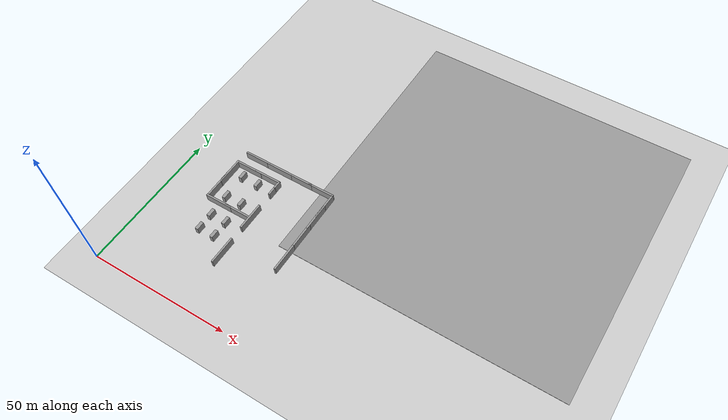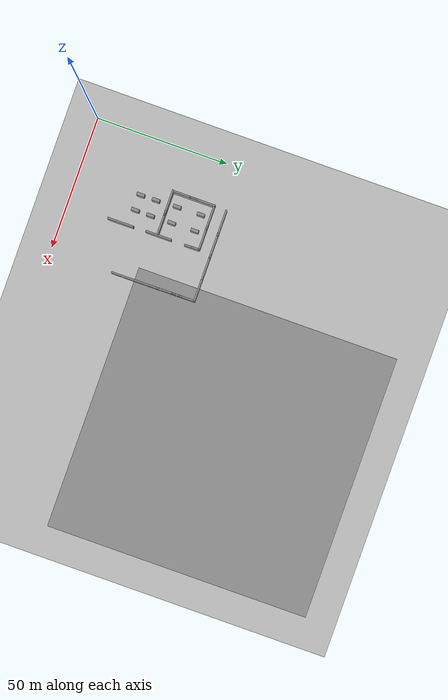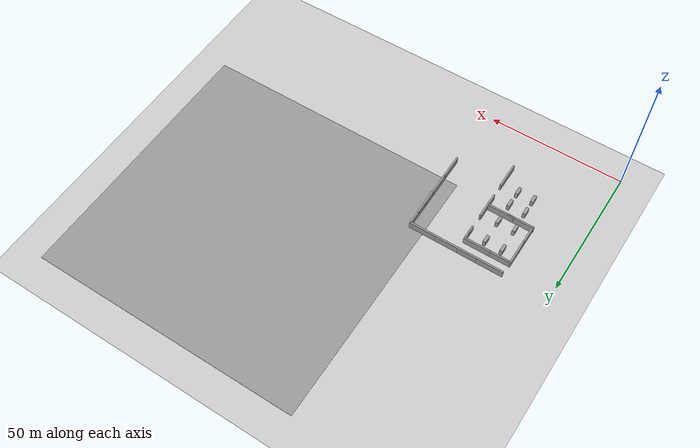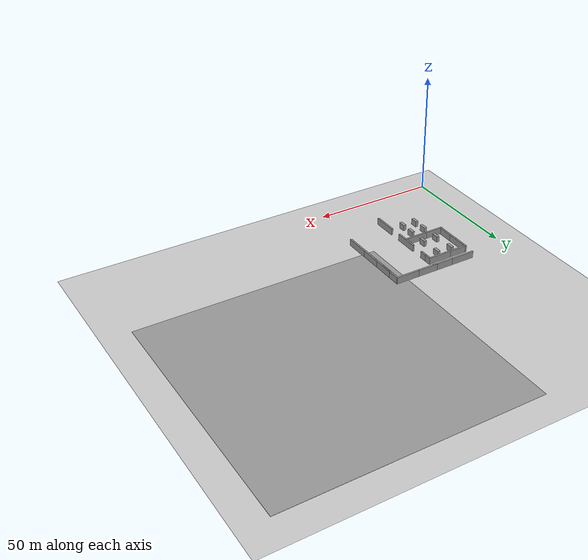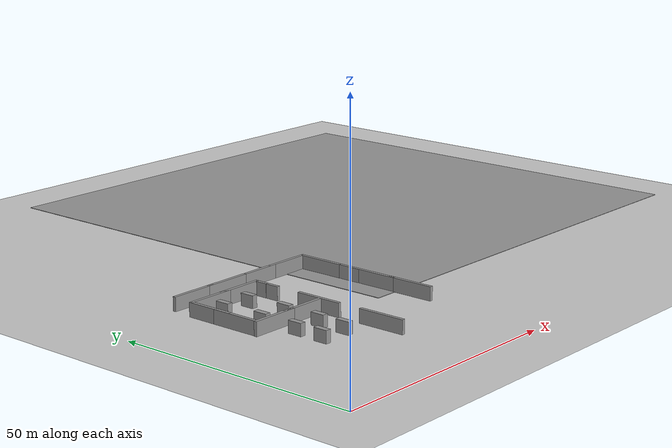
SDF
<sdf version="1.7">
 <world name="default">
  <model name="ground_plane">
   <static>1</static>
   <link name="link">
    <collision name="collision">
     <geometry><plane><normal>0 0 1</normal><size>100 100</size></plane></geometry>
     <surface><friction><ode><mu>100</mu><mu2>50</mu2></ode></friction></surface>
    </collision>
    <visual name="visual">
     <cast_shadows>0</cast_shadows>
     <geometry><plane><normal>0 0 1</normal><size>100 100</size></plane></geometry>
     <material>
      <script><uri>file://media/materials/scripts/gazebo.material</uri><name>Gazebo/Grey</name></script>
     </material>
    </visual>
   </link>
  </model>
  <model name="ground_plane_2">
   <static>1</static>
   <link name="link">
    <collision name="collision">
     <geometry><plane><normal>0 0 1</normal><size>100 100</size></plane></geometry>
     <surface>
      <contact><collide_bitmask>65535</collide_bitmask></contact>
      <friction><ode><mu>100</mu><mu2>50</mu2></ode></friction>
     </surface>
    </collision>
    <visual name="visual">
     <cast_shadows>0</cast_shadows>
     <geometry><plane><normal>0 0 1</normal><size>100 100</size></plane></geometry>
     <material>
      <script><uri>file://media/materials/scripts/gazebo.material</uri><name>Gazebo/Grey</name></script>
     </material>
    </visual>
   </link>
   <pose>96.4085 82.3703 0 0 -0 0</pose>
  </model>
  <model name="grey_wall_hou_clone_clone_3_clone_0_clone_1">
   <link name="link">
    <pose>0 0 1.37589 0 -0 0</pose>
    <inertial>
     <inertia><ixx>0</ixx><ixy>0</ixy><ixz>0</ixz><iyy>0</iyy><iyz>0</iyz><izz>0</izz></inertia>
     <mass>0</mass>
    </inertial>
    <visual name="visual">
     <cast_shadows>0</cast_shadows>
     <geometry><box><size>9.82221 0.642976 2.8</size></box></geometry>
     <material>
      <script>
       <uri>model://grey_wall/materials/scripts</uri>
       <uri>model://grey_wall/materials/textures</uri>
       <name>vrc/grey_wall</name>
      </script>
      <shader type="pixel"><normal_map>__default__</normal_map></shader>
      <ambient>1 1 1 1</ambient>
      <diffuse>1 1 1 1</diffuse>
      <specular>0 0 0 1</specular>
      <emissive>0 0 0 1</emissive>
     </material>
    </visual>
    <collision name="collision">
     <geometry><box><size>9.82221 0.642976 2.8</size></box></geometry>
     <surface>
      <friction>
       <ode><mu>1</mu><mu2>1</mu2><fdir1>0 0 0</fdir1><slip1>0</slip1><slip2>0</slip2></ode>
       <torsional>
        <coefficient>1</coefficient>
        <patch_radius>0</patch_radius>
        <surface_radius>0</surface_radius>
        <use_patch_radius>1</use_patch_radius>
        <ode><slip>0</slip></ode>
       </torsional>
      </friction>
      <bounce><restitution_coefficient>0</restitution_coefficient><threshold>1e+06</threshold></bounce>
      <contact>
       <collide_without_contact>0</collide_without_contact>
       <collide_without_contact_bitmask>1</collide_without_contact_bitmask>
       <collide_bitmask>1</collide_bitmask>
       <ode>
        <soft_cfm>0</soft_cfm>
        <soft_erp>0.2</soft_erp>
        <kp>1e+13</kp>
        <kd>1</kd>
        <max_vel>0.01</max_vel>
        <min_depth>0</min_depth>
       </ode>
       <bullet>
        <split_impulse>1</split_impulse>
        <split_impulse_penetration_threshold>-0.01</split_impulse_penetration_threshold>
        <soft_cfm>0</soft_cfm>
        <soft_erp>0.2</soft_erp>
        <kp>1e+13</kp>
        <kd>1</kd>
       </bullet>
      </contact>
     </surface>
    </collision>
   </link>
   <static>1</static>
   <pose>33.2826 35.5332 0 0 0 -1.56855</pose>
  </model>
  <model name="grey_wall_hou_clone_clone_clone_9">
   <link name="link">
    <pose>0 0 1.37589 0 -0 0</pose>
    <inertial>
     <inertia><ixx>0</ixx><ixy>0</ixy><ixz>0</ixz><iyy>0</iyy><iyz>0</iyz><izz>0</izz></inertia>
     <mass>0</mass>
    </inertial>
    <visual name="visual">
     <cast_shadows>0</cast_shadows>
     <geometry><box><size>9.82221 0.642976 2.8</size></box></geometry>
     <material>
      <script>
       <uri>model://grey_wall/materials/scripts</uri>
       <uri>model://grey_wall/materials/textures</uri>
       <name>vrc/grey_wall</name>
      </script>
      <shader type="pixel"><normal_map>__default__</normal_map></shader>
      <ambient>1 1 1 1</ambient>
      <diffuse>1 1 1 1</diffuse>
      <specular>0 0 0 1</specular>
      <emissive>0 0 0 1</emissive>
     </material>
    </visual>
    <collision name="collision">
     <geometry><box><size>9.82221 0.642976 2.8</size></box></geometry>
     <surface>
      <friction>
       <ode><mu>1</mu><mu2>1</mu2><fdir1>0 0 0</fdir1><slip1>0</slip1><slip2>0</slip2></ode>
       <torsional>
        <coefficient>1</coefficient>
        <patch_radius>0</patch_radius>
        <surface_radius>0</surface_radius>
        <use_patch_radius>1</use_patch_radius>
        <ode><slip>0</slip></ode>
       </torsional>
      </friction>
      <bounce><restitution_coefficient>0</restitution_coefficient><threshold>1e+06</threshold></bounce>
      <contact>
       <collide_without_contact>0</collide_without_contact>
       <collide_without_contact_bitmask>1</collide_without_contact_bitmask>
       <collide_bitmask>1</collide_bitmask>
       <ode>
        <soft_cfm>0</soft_cfm>
        <soft_erp>0.2</soft_erp>
        <kp>1e+13</kp>
        <kd>1</kd>
        <max_vel>0.01</max_vel>
        <min_depth>0</min_depth>
       </ode>
       <bullet>
        <split_impulse>1</split_impulse>
        <split_impulse_penetration_threshold>-0.01</split_impulse_penetration_threshold>
        <soft_cfm>0</soft_cfm>
        <soft_erp>0.2</soft_erp>
        <kp>1e+13</kp>
        <kd>1</kd>
       </bullet>
      </contact>
     </surface>
    </collision>
   </link>
   <static>1</static>
   <pose>20.8801 35.0651 0 0 -0 0</pose>
  </model>
  <model name="grey_wall_hou_clone_clone_clone_10">
   <link name="link">
    <pose>0 0 1.37589 0 -0 0</pose>
    <inertial>
     <inertia><ixx>0</ixx><ixy>0</ixy><ixz>0</ixz><iyy>0</iyy><iyz>0</iyz><izz>0</izz></inertia>
     <mass>0</mass>
    </inertial>
    <visual name="visual">
     <cast_shadows>0</cast_shadows>
     <geometry><box><size>9.82221 0.642976 2.8</size></box></geometry>
     <material>
      <script>
       <uri>model://grey_wall/materials/scripts</uri>
       <uri>model://grey_wall/materials/textures</uri>
       <name>vrc/grey_wall</name>
      </script>
      <shader type="pixel"><normal_map>__default__</normal_map></shader>
      <ambient>1 1 1 1</ambient>
      <diffuse>1 1 1 1</diffuse>
      <specular>0 0 0 1</specular>
      <emissive>0 0 0 1</emissive>
     </material>
    </visual>
    <collision name="collision">
     <geometry><box><size>9.82221 0.642976 2.8</size></box></geometry>
     <surface>
      <friction>
       <ode><mu>1</mu><mu2>1</mu2><fdir1>0 0 0</fdir1><slip1>0</slip1><slip2>0</slip2></ode>
       <torsional>
        <coefficient>1</coefficient>
        <patch_radius>0</patch_radius>
        <surface_radius>0</surface_radius>
        <use_patch_radius>1</use_patch_radius>
        <ode><slip>0</slip></ode>
       </torsional>
      </friction>
      <bounce><restitution_coefficient>0</restitution_coefficient><threshold>1e+06</threshold></bounce>
      <contact>
       <collide_without_contact>0</collide_without_contact>
       <collide_without_contact_bitmask>1</collide_without_contact_bitmask>
       <collide_bitmask>1</collide_bitmask>
       <ode>
        <soft_cfm>0</soft_cfm>
        <soft_erp>0.2</soft_erp>
        <kp>1e+13</kp>
        <kd>1</kd>
        <max_vel>0.01</max_vel>
        <min_depth>0</min_depth>
       </ode>
       <bullet>
        <split_impulse>1</split_impulse>
        <split_impulse_penetration_threshold>-0.01</split_impulse_penetration_threshold>
        <soft_cfm>0</soft_cfm>
        <soft_erp>0.2</soft_erp>
        <kp>1e+13</kp>
        <kd>1</kd>
       </bullet>
      </contact>
     </surface>
    </collision>
   </link>
   <static>1</static>
   <pose>28.4204 35.0767 0 0 -0 0</pose>
  </model>
  <model name="grey_wall_hou_clone_clone_3_clone_0_clone_1_clone_2">
   <link name="link">
    <pose>0 0 1.37589 0 -0 0</pose>
    <inertial>
     <inertia><ixx>0</ixx><ixy>0</ixy><ixz>0</ixz><iyy>0</iyy><iyz>0</iyz><izz>0</izz></inertia>
     <mass>0</mass>
    </inertial>
    <visual name="visual">
     <cast_shadows>0</cast_shadows>
     <geometry><box><size>9.82221 0.642976 2.8</size></box></geometry>
     <material>
      <script>
       <uri>model://grey_wall/materials/scripts</uri>
       <uri>model://grey_wall/materials/textures</uri>
       <name>vrc/grey_wall</name>
      </script>
      <shader type="pixel"><normal_map>__default__</normal_map></shader>
      <ambient>1 1 1 1</ambient>
      <diffuse>1 1 1 1</diffuse>
      <specular>0 0 0 1</specular>
      <emissive>0 0 0 1</emissive>
     </material>
    </visual>
    <collision name="collision">
     <geometry><box><size>9.82221 0.642976 2.8</size></box></geometry>
     <surface>
      <friction>
       <ode><mu>1</mu><mu2>1</mu2><fdir1>0 0 0</fdir1><slip1>0</slip1><slip2>0</slip2></ode>
       <torsional>
        <coefficient>1</coefficient>
        <patch_radius>0</patch_radius>
        <surface_radius>0</surface_radius>
        <use_patch_radius>1</use_patch_radius>
        <ode><slip>0</slip></ode>
       </torsional>
      </friction>
      <bounce><restitution_coefficient>0</restitution_coefficient><threshold>1e+06</threshold></bounce>
      <contact>
       <collide_without_contact>0</collide_without_contact>
       <collide_without_contact_bitmask>1</collide_without_contact_bitmask>
       <collide_bitmask>1</collide_bitmask>
       <ode>
        <soft_cfm>0</soft_cfm>
        <soft_erp>0.2</soft_erp>
        <kp>1e+13</kp>
        <kd>1</kd>
        <max_vel>0.01</max_vel>
        <min_depth>0</min_depth>
       </ode>
       <bullet>
        <split_impulse>1</split_impulse>
        <split_impulse_penetration_threshold>-0.01</split_impulse_penetration_threshold>
        <soft_cfm>0</soft_cfm>
        <soft_erp>0.2</soft_erp>
        <kp>1e+13</kp>
        <kd>1</kd>
       </bullet>
      </contact>
     </surface>
    </collision>
   </link>
   <static>1</static>
   <pose>16.3889 46.4515 0 0 0 -1.56855</pose>
  </model>
  <model name="grey_wall_hou_clone_clone_clone_4_clone_clone_0_clone">
   <link name="link">
    <pose>0 0 1.37589 0 -0 0</pose>
    <inertial>
     <inertia><ixx>0</ixx><ixy>0</ixy><ixz>0</ixz><iyy>0</iyy><iyz>0</iyz><izz>0</izz></inertia>
     <mass>0</mass>
    </inertial>
    <visual name="visual">
     <cast_shadows>0</cast_shadows>
     <geometry><box><size>9.82221 0.642976 2.8</size></box></geometry>
     <material>
      <script>
       <uri>model://grey_wall/materials/scripts</uri>
       <uri>model://grey_wall/materials/textures</uri>
       <name>vrc/grey_wall</name>
      </script>
      <shader type="pixel"><normal_map>__default__</normal_map></shader>
      <ambient>1 1 1 1</ambient>
      <diffuse>1 1 1 1</diffuse>
      <specular>0 0 0 1</specular>
      <emissive>0 0 0 1</emissive>
     </material>
    </visual>
    <collision name="collision">
     <geometry><box><size>9.82221 0.642976 2.8</size></box></geometry>
     <surface>
      <friction>
       <ode><mu>1</mu><mu2>1</mu2><fdir1>0 0 0</fdir1><slip1>0</slip1><slip2>0</slip2></ode>
       <torsional>
        <coefficient>1</coefficient>
        <patch_radius>0</patch_radius>
        <surface_radius>0</surface_radius>
        <use_patch_radius>1</use_patch_radius>
        <ode><slip>0</slip></ode>
       </torsional>
      </friction>
      <bounce><restitution_coefficient>0</restitution_coefficient><threshold>1e+06</threshold></bounce>
      <contact>
       <collide_without_contact>0</collide_without_contact>
       <collide_without_contact_bitmask>1</collide_without_contact_bitmask>
       <collide_bitmask>1</collide_bitmask>
       <ode>
        <soft_cfm>0</soft_cfm>
        <soft_erp>0.2</soft_erp>
        <kp>1e+13</kp>
        <kd>1</kd>
        <max_vel>0.01</max_vel>
        <min_depth>0</min_depth>
       </ode>
       <bullet>
        <split_impulse>1</split_impulse>
        <split_impulse_penetration_threshold>-0.01</split_impulse_penetration_threshold>
        <soft_cfm>0</soft_cfm>
        <soft_erp>0.2</soft_erp>
        <kp>1e+13</kp>
        <kd>1</kd>
       </bullet>
      </contact>
     </surface>
    </collision>
   </link>
   <static>1</static>
   <pose>21.103 51.0163 0 0 -0 0</pose>
  </model>
  <model name="grey_wall_hou_clone_clone_clone_4_clone_clone_0_clone_0">
   <link name="link">
    <pose>0 0 1.37589 0 -0 0</pose>
    <inertial>
     <inertia><ixx>0</ixx><ixy>0</ixy><ixz>0</ixz><iyy>0</iyy><iyz>0</iyz><izz>0</izz></inertia>
     <mass>0</mass>
    </inertial>
    <visual name="visual">
     <cast_shadows>0</cast_shadows>
     <geometry><box><size>9.82221 0.642976 2.8</size></box></geometry>
     <material>
      <script>
       <uri>model://grey_wall/materials/scripts</uri>
       <uri>model://grey_wall/materials/textures</uri>
       <name>vrc/grey_wall</name>
      </script>
      <shader type="pixel"><normal_map>__default__</normal_map></shader>
      <ambient>1 1 1 1</ambient>
      <diffuse>1 1 1 1</diffuse>
      <specular>0 0 0 1</specular>
      <emissive>0 0 0 1</emissive>
     </material>
    </visual>
    <collision name="collision">
     <geometry><box><size>9.82221 0.642976 2.8</size></box></geometry>
     <surface>
      <friction>
       <ode><mu>1</mu><mu2>1</mu2><fdir1>0 0 0</fdir1><slip1>0</slip1><slip2>0</slip2></ode>
       <torsional>
        <coefficient>1</coefficient>
        <patch_radius>0</patch_radius>
        <surface_radius>0</surface_radius>
        <use_patch_radius>1</use_patch_radius>
        <ode><slip>0</slip></ode>
       </torsional>
      </friction>
      <bounce><restitution_coefficient>0</restitution_coefficient><threshold>1e+06</threshold></bounce>
      <contact>
       <collide_without_contact>0</collide_without_contact>
       <collide_without_contact_bitmask>1</collide_without_contact_bitmask>
       <collide_bitmask>1</collide_bitmask>
       <ode>
        <soft_cfm>0</soft_cfm>
        <soft_erp>0.2</soft_erp>
        <kp>1e+13</kp>
        <kd>1</kd>
        <max_vel>0.01</max_vel>
        <min_depth>0</min_depth>
       </ode>
       <bullet>
        <split_impulse>1</split_impulse>
        <split_impulse_penetration_threshold>-0.01</split_impulse_penetration_threshold>
        <soft_cfm>0</soft_cfm>
        <soft_erp>0.2</soft_erp>
        <kp>1e+13</kp>
        <kd>1</kd>
       </bullet>
      </contact>
     </surface>
    </collision>
   </link>
   <static>1</static>
   <pose>28.6481 51.0553 0 0 -0 0</pose>
  </model>
  <model name="grey_wall_hou_clone_clone_clone_4_clone_clone_0_clone_1">
   <link name="link">
    <pose>0 0 1.37589 0 -0 0</pose>
    <inertial>
     <inertia><ixx>0</ixx><ixy>0</ixy><ixz>0</ixz><iyy>0</iyy><iyz>0</iyz><izz>0</izz></inertia>
     <mass>0</mass>
    </inertial>
    <visual name="visual">
     <cast_shadows>0</cast_shadows>
     <geometry><box><size>9.82221 0.642976 2.8</size></box></geometry>
     <material>
      <script>
       <uri>model://grey_wall/materials/scripts</uri>
       <uri>model://grey_wall/materials/textures</uri>
       <name>vrc/grey_wall</name>
      </script>
      <shader type="pixel"><normal_map>__default__</normal_map></shader>
      <ambient>1 1 1 1</ambient>
      <diffuse>1 1 1 1</diffuse>
      <specular>0 0 0 1</specular>
      <emissive>0 0 0 1</emissive>
     </material>
    </visual>
    <collision name="collision">
     <geometry><box><size>9.82221 0.642976 2.8</size></box></geometry>
     <surface>
      <friction>
       <ode><mu>1</mu><mu2>1</mu2><fdir1>0 0 0</fdir1><slip1>0</slip1><slip2>0</slip2></ode>
       <torsional>
        <coefficient>1</coefficient>
        <patch_radius>0</patch_radius>
        <surface_radius>0</surface_radius>
        <use_patch_radius>1</use_patch_radius>
        <ode><slip>0</slip></ode>
       </torsional>
      </friction>
      <bounce><restitution_coefficient>0</restitution_coefficient><threshold>1e+06</threshold></bounce>
      <contact>
       <collide_without_contact>0</collide_without_contact>
       <collide_without_contact_bitmask>1</collide_without_contact_bitmask>
       <collide_bitmask>1</collide_bitmask>
       <ode>
        <soft_cfm>0</soft_cfm>
        <soft_erp>0.2</soft_erp>
        <kp>1e+13</kp>
        <kd>1</kd>
        <max_vel>0.01</max_vel>
        <min_depth>0</min_depth>
       </ode>
       <bullet>
        <split_impulse>1</split_impulse>
        <split_impulse_penetration_threshold>-0.01</split_impulse_penetration_threshold>
        <soft_cfm>0</soft_cfm>
        <soft_erp>0.2</soft_erp>
        <kp>1e+13</kp>
        <kd>1</kd>
       </bullet>
      </contact>
     </surface>
    </collision>
   </link>
   <static>1</static>
   <pose>21.3966 55.6567 0 0 -0 0</pose>
  </model>
  <model name="grey_wall_hou_clone_clone_clone_4_clone_clone_0_clone_2">
   <link name="link">
    <pose>0 0 1.37589 0 -0 0</pose>
    <inertial>
     <inertia><ixx>0</ixx><ixy>0</ixy><ixz>0</ixz><iyy>0</iyy><iyz>0</iyz><izz>0</izz></inertia>
     <mass>0</mass>
    </inertial>
    <visual name="visual">
     <cast_shadows>0</cast_shadows>
     <geometry><box><size>9.82221 0.642976 2.8</size></box></geometry>
     <material>
      <script>
       <uri>model://grey_wall/materials/scripts</uri>
       <uri>model://grey_wall/materials/textures</uri>
       <name>vrc/grey_wall</name>
      </script>
      <shader type="pixel"><normal_map>__default__</normal_map></shader>
      <ambient>1 1 1 1</ambient>
      <diffuse>1 1 1 1</diffuse>
      <specular>0 0 0 1</specular>
      <emissive>0 0 0 1</emissive>
     </material>
    </visual>
    <collision name="collision">
     <geometry><box><size>9.82221 0.642976 2.8</size></box></geometry>
     <surface>
      <friction>
       <ode><mu>1</mu><mu2>1</mu2><fdir1>0 0 0</fdir1><slip1>0</slip1><slip2>0</slip2></ode>
       <torsional>
        <coefficient>1</coefficient>
        <patch_radius>0</patch_radius>
        <surface_radius>0</surface_radius>
        <use_patch_radius>1</use_patch_radius>
        <ode><slip>0</slip></ode>
       </torsional>
      </friction>
      <bounce><restitution_coefficient>0</restitution_coefficient><threshold>1e+06</threshold></bounce>
      <contact>
       <collide_without_contact>0</collide_without_contact>
       <collide_without_contact_bitmask>1</collide_without_contact_bitmask>
       <collide_bitmask>1</collide_bitmask>
       <ode>
        <soft_cfm>0</soft_cfm>
        <soft_erp>0.2</soft_erp>
        <kp>1e+13</kp>
        <kd>1</kd>
        <max_vel>0.01</max_vel>
        <min_depth>0</min_depth>
       </ode>
       <bullet>
        <split_impulse>1</split_impulse>
        <split_impulse_penetration_threshold>-0.01</split_impulse_penetration_threshold>
        <soft_cfm>0</soft_cfm>
        <soft_erp>0.2</soft_erp>
        <kp>1e+13</kp>
        <kd>1</kd>
       </bullet>
      </contact>
     </surface>
    </collision>
   </link>
   <static>1</static>
   <pose>30.1092 55.6527 0 0 -0 0</pose>
  </model>
  <model name="grey_wall_hou_clone_clone_clone_4_clone_clone_0_clone_3">
   <link name="link">
    <pose>0 0 1.37589 0 -0 0</pose>
    <inertial>
     <inertia><ixx>0</ixx><ixy>0</ixy><ixz>0</ixz><iyy>0</iyy><iyz>0</iyz><izz>0</izz></inertia>
     <mass>0</mass>
    </inertial>
    <visual name="visual">
     <cast_shadows>0</cast_shadows>
     <geometry><box><size>9.82221 0.642976 2.8</size></box></geometry>
     <material>
      <script>
       <uri>model://grey_wall/materials/scripts</uri>
       <uri>model://grey_wall/materials/textures</uri>
       <name>vrc/grey_wall</name>
      </script>
      <shader type="pixel"><normal_map>__default__</normal_map></shader>
      <ambient>1 1 1 1</ambient>
      <diffuse>1 1 1 1</diffuse>
      <specular>0 0 0 1</specular>
      <emissive>0 0 0 1</emissive>
     </material>
    </visual>
    <collision name="collision">
     <geometry><box><size>9.82221 0.642976 2.8</size></box></geometry>
     <surface>
      <friction>
       <ode><mu>1</mu><mu2>1</mu2><fdir1>0 0 0</fdir1><slip1>0</slip1><slip2>0</slip2></ode>
       <torsional>
        <coefficient>1</coefficient>
        <patch_radius>0</patch_radius>
        <surface_radius>0</surface_radius>
        <use_patch_radius>1</use_patch_radius>
        <ode><slip>0</slip></ode>
       </torsional>
      </friction>
      <bounce><restitution_coefficient>0</restitution_coefficient><threshold>1e+06</threshold></bounce>
      <contact>
       <collide_without_contact>0</collide_without_contact>
       <collide_without_contact_bitmask>1</collide_without_contact_bitmask>
       <collide_bitmask>1</collide_bitmask>
       <ode>
        <soft_cfm>0</soft_cfm>
        <soft_erp>0.2</soft_erp>
        <kp>1e+13</kp>
        <kd>1</kd>
        <max_vel>0.01</max_vel>
        <min_depth>0</min_depth>
       </ode>
       <bullet>
        <split_impulse>1</split_impulse>
        <split_impulse_penetration_threshold>-0.01</split_impulse_penetration_threshold>
        <soft_cfm>0</soft_cfm>
        <soft_erp>0.2</soft_erp>
        <kp>1e+13</kp>
        <kd>1</kd>
       </bullet>
      </contact>
     </surface>
    </collision>
   </link>
   <static>1</static>
   <pose>38.2499 55.6549 0 0 -0 0</pose>
  </model>
  <model name="grey_wall_hou_clone_clone_clone_4_clone_clone_0_clone_4">
   <link name="link">
    <pose>0 0 1.37589 0 -0 0</pose>
    <inertial>
     <inertia><ixx>0</ixx><ixy>0</ixy><ixz>0</ixz><iyy>0</iyy><iyz>0</iyz><izz>0</izz></inertia>
     <mass>0</mass>
    </inertial>
    <visual name="visual">
     <cast_shadows>0</cast_shadows>
     <geometry><box><size>9.82221 0.642976 2.8</size></box></geometry>
     <material>
      <script>
       <uri>model://grey_wall/materials/scripts</uri>
       <uri>model://grey_wall/materials/textures</uri>
       <name>vrc/grey_wall</name>
      </script>
      <shader type="pixel"><normal_map>__default__</normal_map></shader>
      <ambient>1 1 1 1</ambient>
      <diffuse>1 1 1 1</diffuse>
      <specular>0 0 0 1</specular>
      <emissive>0 0 0 1</emissive>
     </material>
    </visual>
    <collision name="collision">
     <geometry><box><size>9.82221 0.642976 2.8</size></box></geometry>
     <surface>
      <friction>
       <ode><mu>1</mu><mu2>1</mu2><fdir1>0 0 0</fdir1><slip1>0</slip1><slip2>0</slip2></ode>
       <torsional>
        <coefficient>1</coefficient>
        <patch_radius>0</patch_radius>
        <surface_radius>0</surface_radius>
        <use_patch_radius>1</use_patch_radius>
        <ode><slip>0</slip></ode>
       </torsional>
      </friction>
      <bounce><restitution_coefficient>0</restitution_coefficient><threshold>1e+06</threshold></bounce>
      <contact>
       <collide_without_contact>0</collide_without_contact>
       <collide_without_contact_bitmask>1</collide_without_contact_bitmask>
       <collide_bitmask>1</collide_bitmask>
       <ode>
        <soft_cfm>0</soft_cfm>
        <soft_erp>0.2</soft_erp>
        <kp>1e+13</kp>
        <kd>1</kd>
        <max_vel>0.01</max_vel>
        <min_depth>0</min_depth>
       </ode>
       <bullet>
        <split_impulse>1</split_impulse>
        <split_impulse_penetration_threshold>-0.01</split_impulse_penetration_threshold>
        <soft_cfm>0</soft_cfm>
        <soft_erp>0.2</soft_erp>
        <kp>1e+13</kp>
        <kd>1</kd>
       </bullet>
      </contact>
     </surface>
    </collision>
   </link>
   <static>1</static>
   <pose>46.6947 55.6613 0 0 -0 0</pose>
  </model>
  <model name="grey_wall_short_clone_0_clone_clone_clone">
   <link name="link">
    <pose>0 0 1.37589 0 -0 0</pose>
    <inertial>
     <inertia><ixx>0</ixx><ixy>0</ixy><ixz>0</ixz><iyy>0</iyy><iyz>0</iyz><izz>0</izz></inertia>
     <mass>0</mass>
    </inertial>
    <visual name="visual">
     <cast_shadows>0</cast_shadows>
     <geometry><box><size>3.01651 0.642976 2.8</size></box></geometry>
     <material>
      <script>
       <uri>model://grey_wall/materials/scripts</uri>
       <uri>model://grey_wall/materials/textures</uri>
       <name>vrc/grey_wall</name>
      </script>
      <shader type="pixel"><normal_map>__default__</normal_map></shader>
      <ambient>1 1 1 1</ambient>
      <diffuse>1 1 1 1</diffuse>
      <specular>0 0 0 1</specular>
      <emissive>0 0 0 1</emissive>
     </material>
    </visual>
    <collision name="collision">
     <geometry><box><size>3.01651 0.642976 2.8</size></box></geometry>
     <surface>
      <friction>
       <ode><mu>1</mu><mu2>1</mu2><fdir1>0 0 0</fdir1><slip1>0</slip1><slip2>0</slip2></ode>
       <torsional>
        <coefficient>1</coefficient>
        <patch_radius>0</patch_radius>
        <surface_radius>0</surface_radius>
        <use_patch_radius>1</use_patch_radius>
        <ode><slip>0</slip></ode>
       </torsional>
      </friction>
      <bounce><restitution_coefficient>0</restitution_coefficient><threshold>1e+06</threshold></bounce>
      <contact>
       <collide_without_contact>0</collide_without_contact>
       <collide_without_contact_bitmask>1</collide_without_contact_bitmask>
       <collide_bitmask>1</collide_bitmask>
       <ode>
        <soft_cfm>0</soft_cfm>
        <soft_erp>0.2</soft_erp>
        <kp>1e+13</kp>
        <kd>1</kd>
        <max_vel>0.01</max_vel>
        <min_depth>0</min_depth>
       </ode>
       <bullet>
        <split_impulse>1</split_impulse>
        <split_impulse_penetration_threshold>-0.01</split_impulse_penetration_threshold>
        <soft_cfm>0</soft_cfm>
        <soft_erp>0.2</soft_erp>
        <kp>1e+13</kp>
        <kd>1</kd>
       </bullet>
      </contact>
     </surface>
    </collision>
   </link>
   <static>1</static>
   <pose>33.2477 49.8517 0 0 0 -1.57149</pose>
  </model>
  <model name="grey_wall_hou_clone_clone_3_clone_0_clone_1_clone_3_clone">
   <link name="link">
    <pose>0 0 1.37589 0 -0 0</pose>
    <inertial>
     <inertia><ixx>0</ixx><ixy>0</ixy><ixz>0</ixz><iyy>0</iyy><iyz>0</iyz><izz>0</izz></inertia>
     <mass>0</mass>
    </inertial>
    <visual name="visual">
     <cast_shadows>0</cast_shadows>
     <geometry><box><size>9.82221 0.642976 2.8</size></box></geometry>
     <material>
      <script>
       <uri>model://grey_wall/materials/scripts</uri>
       <uri>model://grey_wall/materials/textures</uri>
       <name>vrc/grey_wall</name>
      </script>
      <shader type="pixel"><normal_map>__default__</normal_map></shader>
      <ambient>1 1 1 1</ambient>
      <diffuse>1 1 1 1</diffuse>
      <specular>0 0 0 1</specular>
      <emissive>0 0 0 1</emissive>
     </material>
    </visual>
    <collision name="collision">
     <geometry><box><size>9.82221 0.642976 2.8</size></box></geometry>
     <surface>
      <friction>
       <ode><mu>1</mu><mu2>1</mu2><fdir1>0 0 0</fdir1><slip1>0</slip1><slip2>0</slip2></ode>
       <torsional>
        <coefficient>1</coefficient>
        <patch_radius>0</patch_radius>
        <surface_radius>0</surface_radius>
        <use_patch_radius>1</use_patch_radius>
        <ode><slip>0</slip></ode>
       </torsional>
      </friction>
      <bounce><restitution_coefficient>0</restitution_coefficient><threshold>1e+06</threshold></bounce>
      <contact>
       <collide_without_contact>0</collide_without_contact>
       <collide_without_contact_bitmask>1</collide_without_contact_bitmask>
       <collide_bitmask>1</collide_bitmask>
       <ode>
        <soft_cfm>0</soft_cfm>
        <soft_erp>0.2</soft_erp>
        <kp>1e+13</kp>
        <kd>1</kd>
        <max_vel>0.01</max_vel>
        <min_depth>0</min_depth>
       </ode>
       <bullet>
        <split_impulse>1</split_impulse>
        <split_impulse_penetration_threshold>-0.01</split_impulse_penetration_threshold>
        <soft_cfm>0</soft_cfm>
        <soft_erp>0.2</soft_erp>
        <kp>1e+13</kp>
        <kd>1</kd>
       </bullet>
      </contact>
     </surface>
    </collision>
   </link>
   <static>1</static>
   <pose>51.3714 45.9926 0 0 0 -1.56855</pose>
  </model>
  <model name="grey_wall_hou_clone_clone_3_clone_0_clone_1_clone_3_clone_clone">
   <link name="link">
    <pose>0 0 1.37589 0 -0 0</pose>
    <inertial>
     <inertia><ixx>0</ixx><ixy>0</ixy><ixz>0</ixz><iyy>0</iyy><iyz>0</iyz><izz>0</izz></inertia>
     <mass>0</mass>
    </inertial>
    <visual name="visual">
     <cast_shadows>0</cast_shadows>
     <geometry><box><size>9.82221 0.642976 2.8</size></box></geometry>
     <material>
      <script>
       <uri>model://grey_wall/materials/scripts</uri>
       <uri>model://grey_wall/materials/textures</uri>
       <name>vrc/grey_wall</name>
      </script>
      <shader type="pixel"><normal_map>__default__</normal_map></shader>
      <ambient>1 1 1 1</ambient>
      <diffuse>1 1 1 1</diffuse>
      <specular>0 0 0 1</specular>
      <emissive>0 0 0 1</emissive>
     </material>
    </visual>
    <collision name="collision">
     <geometry><box><size>9.82221 0.642976 2.8</size></box></geometry>
     <surface>
      <friction>
       <ode><mu>1</mu><mu2>1</mu2><fdir1>0 0 0</fdir1><slip1>0</slip1><slip2>0</slip2></ode>
       <torsional>
        <coefficient>1</coefficient>
        <patch_radius>0</patch_radius>
        <surface_radius>0</surface_radius>
        <use_patch_radius>1</use_patch_radius>
        <ode><slip>0</slip></ode>
       </torsional>
      </friction>
      <bounce><restitution_coefficient>0</restitution_coefficient><threshold>1e+06</threshold></bounce>
      <contact>
       <collide_without_contact>0</collide_without_contact>
       <collide_without_contact_bitmask>1</collide_without_contact_bitmask>
       <collide_bitmask>1</collide_bitmask>
       <ode>
        <soft_cfm>0</soft_cfm>
        <soft_erp>0.2</soft_erp>
        <kp>1e+13</kp>
        <kd>1</kd>
        <max_vel>0.01</max_vel>
        <min_depth>0</min_depth>
       </ode>
       <bullet>
        <split_impulse>1</split_impulse>
        <split_impulse_penetration_threshold>-0.01</split_impulse_penetration_threshold>
        <soft_cfm>0</soft_cfm>
        <soft_erp>0.2</soft_erp>
        <kp>1e+13</kp>
        <kd>1</kd>
       </bullet>
      </contact>
     </surface>
    </collision>
   </link>
   <static>1</static>
   <pose>51.4257 37.6216 0 0 0 -1.56855</pose>
  </model>
  <model name="grey_wall_hou_clone_clone_3_clone_0_clone_1_clone_3_clone_clone_0">
   <link name="link">
    <pose>0 0 1.37589 0 -0 0</pose>
    <inertial>
     <inertia><ixx>0</ixx><ixy>0</ixy><ixz>0</ixz><iyy>0</iyy><iyz>0</iyz><izz>0</izz></inertia>
     <mass>0</mass>
    </inertial>
    <visual name="visual">
     <cast_shadows>0</cast_shadows>
     <geometry><box><size>9.82221 0.642976 2.8</size></box></geometry>
     <material>
      <script>
       <uri>model://grey_wall/materials/scripts</uri>
       <uri>model://grey_wall/materials/textures</uri>
       <name>vrc/grey_wall</name>
      </script>
      <shader type="pixel"><normal_map>__default__</normal_map></shader>
      <ambient>1 1 1 1</ambient>
      <diffuse>1 1 1 1</diffuse>
      <specular>0 0 0 1</specular>
      <emissive>0 0 0 1</emissive>
     </material>
    </visual>
    <collision name="collision">
     <geometry><box><size>9.82221 0.642976 2.8</size></box></geometry>
     <surface>
      <friction>
       <ode><mu>1</mu><mu2>1</mu2><fdir1>0 0 0</fdir1><slip1>0</slip1><slip2>0</slip2></ode>
       <torsional>
        <coefficient>1</coefficient>
        <patch_radius>0</patch_radius>
        <surface_radius>0</surface_radius>
        <use_patch_radius>1</use_patch_radius>
        <ode><slip>0</slip></ode>
       </torsional>
      </friction>
      <bounce><restitution_coefficient>0</restitution_coefficient><threshold>1e+06</threshold></bounce>
      <contact>
       <collide_without_contact>0</collide_without_contact>
       <collide_without_contact_bitmask>1</collide_without_contact_bitmask>
       <collide_bitmask>1</collide_bitmask>
       <ode>
        <soft_cfm>0</soft_cfm>
        <soft_erp>0.2</soft_erp>
        <kp>1e+13</kp>
        <kd>1</kd>
        <max_vel>0.01</max_vel>
        <min_depth>0</min_depth>
       </ode>
       <bullet>
        <split_impulse>1</split_impulse>
        <split_impulse_penetration_threshold>-0.01</split_impulse_penetration_threshold>
        <soft_cfm>0</soft_cfm>
        <soft_erp>0.2</soft_erp>
        <kp>1e+13</kp>
        <kd>1</kd>
       </bullet>
      </contact>
     </surface>
    </collision>
   </link>
   <static>1</static>
   <pose>51.476 28.8582 0 0 0 -1.56855</pose>
  </model>
  <model name="unit_box_clone_0">
   <pose>21.1741 38.3847 1.23849 4e-06 -0 0.002668</pose>
   <link name="link">
    <inertial>
     <mass>1</mass>
     <inertia>
      <ixx>0.166667</ixx>
      <ixy>0</ixy>
      <ixz>0</ixz>
      <iyy>0.166667</iyy>
      <iyz>0</iyz>
      <izz>0.166667</izz>
     </inertia>
    </inertial>
    <collision name="collision"><geometry><box><size>1.12952 2.91492 2.47699</size></box></geometry></collision>
    <visual name="visual">
     <geometry><box><size>1.12952 2.91492 2.47699</size></box></geometry>
     <material>
      <script><name>Gazebo/Grey</name><uri>file://media/materials/scripts/gazebo.material</uri></script>
     </material>
    </visual>
   </link>
  </model>
  <model name="unit_box_clone_1">
   <pose>27.319 38.4286 1.23849 -4e-06 -0 -0.002505</pose>
   <link name="link">
    <inertial>
     <mass>1</mass>
     <inertia>
      <ixx>0.166667</ixx>
      <ixy>0</ixy>
      <ixz>0</ixz>
      <iyy>0.166667</iyy>
      <iyz>0</iyz>
      <izz>0.166667</izz>
     </inertia>
    </inertial>
    <collision name="collision"><geometry><box><size>1.12952 2.91492 2.47699</size></box></geometry></collision>
    <visual name="visual">
     <geometry><box><size>1.12952 2.91492 2.47699</size></box></geometry>
     <material>
      <script><name>Gazebo/Grey</name><uri>file://media/materials/scripts/gazebo.material</uri></script>
     </material>
    </visual>
   </link>
  </model>
  <model name="unit_box_clone_2">
   <pose>21.4187 30.3309 1.23849 4e-06 -0 0.005786</pose>
   <link name="link">
    <inertial>
     <mass>1</mass>
     <inertia>
      <ixx>0.166667</ixx>
      <ixy>0</ixy>
      <ixz>0</ixz>
      <iyy>0.166667</iyy>
      <iyz>0</iyz>
      <izz>0.166667</izz>
     </inertia>
    </inertial>
    <collision name="collision"><geometry><box><size>1.12952 2.91492 2.47699</size></box></geometry></collision>
    <visual name="visual">
     <geometry><box><size>1.12952 2.91492 2.47699</size></box></geometry>
     <material>
      <script><name>Gazebo/Grey</name><uri>file://media/materials/scripts/gazebo.material</uri></script>
     </material>
    </visual>
   </link>
  </model>
  <model name="unit_box_clone_4">
   <pose>27.3549 30.3213 1.23849 -4e-06 -0 -0.009829</pose>
   <link name="link">
    <inertial>
     <mass>1</mass>
     <inertia>
      <ixx>0.166667</ixx>
      <ixy>0</ixy>
      <ixz>0</ixz>
      <iyy>0.166667</iyy>
      <iyz>0</iyz>
      <izz>0.166667</izz>
     </inertia>
    </inertial>
    <collision name="collision"><geometry><box><size>1.12952 2.91492 2.47699</size></box></geometry></collision>
    <visual name="visual">
     <geometry><box><size>1.12952 2.91492 2.47699</size></box></geometry>
     <material>
      <script><name>Gazebo/Grey</name><uri>file://media/materials/scripts/gazebo.material</uri></script>
     </material>
    </visual>
   </link>
  </model>
  <model name="unit_box_clone_5">
   <pose>27.3142 24.4681 1.23849 4e-06 -0 0.001591</pose>
   <link name="link">
    <inertial>
     <mass>1</mass>
     <inertia>
      <ixx>0.166667</ixx>
      <ixy>0</ixy>
      <ixz>0</ixz>
      <iyy>0.166667</iyy>
      <iyz>0</iyz>
      <izz>0.166667</izz>
     </inertia>
    </inertial>
    <collision name="collision"><geometry><box><size>1.12952 2.91492 2.47699</size></box></geometry></collision>
    <visual name="visual">
     <geometry><box><size>1.12952 2.91492 2.47699</size></box></geometry>
     <material>
      <script><name>Gazebo/Grey</name><uri>file://media/materials/scripts/gazebo.material</uri></script>
     </material>
    </visual>
   </link>
  </model>
  <model name="unit_box_clone_7">
   <pose>21.4754 24.4965 1.23849 -4e-06 0 0.002332</pose>
   <link name="link">
    <inertial>
     <mass>1</mass>
     <inertia>
      <ixx>0.166667</ixx>
      <ixy>0</ixy>
      <ixz>0</ixz>
      <iyy>0.166667</iyy>
      <iyz>0</iyz>
      <izz>0.166667</izz>
     </inertia>
    </inertial>
    <collision name="collision"><geometry><box><size>1.12952 2.91492 2.47699</size></box></geometry></collision>
    <visual name="visual">
     <geometry><box><size>1.12952 2.91492 2.47699</size></box></geometry>
     <material>
      <script><name>Gazebo/Grey</name><uri>file://media/materials/scripts/gazebo.material</uri></script>
     </material>
    </visual>
   </link>
  </model>
  <model name="unit_box_clone_0_clone">
   <pose>20.9586 47.4249 1.23849 4e-06 -0 0.001865</pose>
   <link name="link">
    <inertial>
     <mass>1</mass>
     <inertia>
      <ixx>0.166667</ixx>
      <ixy>0</ixy>
      <ixz>0</ixz>
      <iyy>0.166667</iyy>
      <iyz>0</iyz>
      <izz>0.166667</izz>
     </inertia>
    </inertial>
    <collision name="collision"><geometry><box><size>1.12952 2.91492 2.47699</size></box></geometry></collision>
    <visual name="visual">
     <geometry><box><size>1.12952 2.91492 2.47699</size></box></geometry>
     <material>
      <script><name>Gazebo/Grey</name><uri>file://media/materials/scripts/gazebo.material</uri></script>
     </material>
    </visual>
   </link>
  </model>
  <model name="unit_box_clone_0_clone_0">
   <pose>27.2365 47.2766 1.23849 -4e-06 -0 0.002358</pose>
   <link name="link">
    <inertial>
     <mass>1</mass>
     <inertia>
      <ixx>0.166667</ixx>
      <ixy>0</ixy>
      <ixz>0</ixz>
      <iyy>0.166667</iyy>
      <iyz>0</iyz>
      <izz>0.166667</izz>
     </inertia>
    </inertial>
    <collision name="collision"><geometry><box><size>1.12952 2.91492 2.47699</size></box></geometry></collision>
    <visual name="visual">
     <geometry><box><size>1.12952 2.91492 2.47699</size></box></geometry>
     <material>
      <script><name>Gazebo/Grey</name><uri>file://media/materials/scripts/gazebo.material</uri></script>
     </material>
    </visual>
   </link>
  </model>
  <model name="grey_wall_hou_clone_clone_3_clone_0_clone_1_clone_2_clone_0">
   <link name="link">
    <pose>0 0 1.37589 0 -0 0</pose>
    <inertial>
     <inertia><ixx>0</ixx><ixy>0</ixy><ixz>0</ixz><iyy>0</iyy><iyz>0</iyz><izz>0</izz></inertia>
     <mass>0</mass>
    </inertial>
    <visual name="visual">
     <cast_shadows>0</cast_shadows>
     <geometry><box><size>9.82221 0.642976 2.8</size></box></geometry>
     <material>
      <script>
       <uri>model://grey_wall/materials/scripts</uri>
       <uri>model://grey_wall/materials/textures</uri>
       <name>vrc/grey_wall</name>
      </script>
      <shader type="pixel"><normal_map>__default__</normal_map></shader>
      <ambient>1 1 1 1</ambient>
      <diffuse>1 1 1 1</diffuse>
      <specular>0 0 0 1</specular>
      <emissive>0 0 0 1</emissive>
     </material>
    </visual>
    <collision name="collision">
     <geometry><box><size>9.82221 0.642976 2.8</size></box></geometry>
     <surface>
      <friction>
       <ode><mu>1</mu><mu2>1</mu2><fdir1>0 0 0</fdir1><slip1>0</slip1><slip2>0</slip2></ode>
       <torsional>
        <coefficient>1</coefficient>
        <patch_radius>0</patch_radius>
        <surface_radius>0</surface_radius>
        <use_patch_radius>1</use_patch_radius>
        <ode><slip>0</slip></ode>
       </torsional>
      </friction>
      <bounce><restitution_coefficient>0</restitution_coefficient><threshold>1e+06</threshold></bounce>
      <contact>
       <collide_without_contact>0</collide_without_contact>
       <collide_without_contact_bitmask>1</collide_without_contact_bitmask>
       <collide_bitmask>1</collide_bitmask>
       <ode>
        <soft_cfm>0</soft_cfm>
        <soft_erp>0.2</soft_erp>
        <kp>1e+13</kp>
        <kd>1</kd>
        <max_vel>0.01</max_vel>
        <min_depth>0</min_depth>
       </ode>
       <bullet>
        <split_impulse>1</split_impulse>
        <split_impulse_penetration_threshold>-0.01</split_impulse_penetration_threshold>
        <soft_cfm>0</soft_cfm>
        <soft_erp>0.2</soft_erp>
        <kp>1e+13</kp>
        <kd>1</kd>
       </bullet>
      </contact>
     </surface>
    </collision>
   </link>
   <static>1</static>
   <pose>51.341 50.8282 0 0 0 -1.56855</pose>
  </model>
  <model name="grey_wall_short_clone_0_clone_clone_clone_clone">
   <link name="link">
    <pose>0 0 1.37589 0 -0 0</pose>
    <inertial>
     <inertia><ixx>0</ixx><ixy>0</ixy><ixz>0</ixz><iyy>0</iyy><iyz>0</iyz><izz>0</izz></inertia>
     <mass>0</mass>
    </inertial>
    <visual name="visual">
     <cast_shadows>0</cast_shadows>
     <geometry><box><size>3.01651 0.642976 2.8</size></box></geometry>
     <material>
      <script>
       <uri>model://grey_wall/materials/scripts</uri>
       <uri>model://grey_wall/materials/textures</uri>
       <name>vrc/grey_wall</name>
      </script>
      <shader type="pixel"><normal_map>__default__</normal_map></shader>
      <ambient>1 1 1 1</ambient>
      <diffuse>1 1 1 1</diffuse>
      <specular>0 0 0 1</specular>
      <emissive>0 0 0 1</emissive>
     </material>
    </visual>
    <collision name="collision">
     <geometry><box><size>3.01651 0.642976 2.8</size></box></geometry>
     <surface>
      <friction>
       <ode><mu>1</mu><mu2>1</mu2><fdir1>0 0 0</fdir1><slip1>0</slip1><slip2>0</slip2></ode>
       <torsional>
        <coefficient>1</coefficient>
        <patch_radius>0</patch_radius>
        <surface_radius>0</surface_radius>
        <use_patch_radius>1</use_patch_radius>
        <ode><slip>0</slip></ode>
       </torsional>
      </friction>
      <bounce><restitution_coefficient>0</restitution_coefficient><threshold>1e+06</threshold></bounce>
      <contact>
       <collide_without_contact>0</collide_without_contact>
       <collide_without_contact_bitmask>1</collide_without_contact_bitmask>
       <collide_bitmask>1</collide_bitmask>
       <ode>
        <soft_cfm>0</soft_cfm>
        <soft_erp>0.2</soft_erp>
        <kp>1e+13</kp>
        <kd>1</kd>
        <max_vel>0.01</max_vel>
        <min_depth>0</min_depth>
       </ode>
       <bullet>
        <split_impulse>1</split_impulse>
        <split_impulse_penetration_threshold>-0.01</split_impulse_penetration_threshold>
        <soft_cfm>0</soft_cfm>
        <soft_erp>0.2</soft_erp>
        <kp>1e+13</kp>
        <kd>1</kd>
       </bullet>
      </contact>
     </surface>
    </collision>
   </link>
   <static>1</static>
   <pose>33.2766 46.9831 0 0 0 -1.57149</pose>
  </model>
  <model name="grey_wall_hou_clone_clone_3_clone_0_clone_1_clone_2_clone_clone">
   <link name="link">
    <pose>0 0 1.37589 0 -0 0</pose>
    <inertial>
     <inertia><ixx>0</ixx><ixy>0</ixy><ixz>0</ixz><iyy>0</iyy><iyz>0</iyz><izz>0</izz></inertia>
     <mass>0</mass>
    </inertial>
    <visual name="visual">
     <cast_shadows>0</cast_shadows>
     <geometry><box><size>9.82221 0.642976 2.8</size></box></geometry>
     <material>
      <script>
       <uri>model://grey_wall/materials/scripts</uri>
       <uri>model://grey_wall/materials/textures</uri>
       <name>vrc/grey_wall</name>
      </script>
      <shader type="pixel"><normal_map>__default__</normal_map></shader>
      <ambient>1 1 1 1</ambient>
      <diffuse>1 1 1 1</diffuse>
      <specular>0 0 0 1</specular>
      <emissive>0 0 0 1</emissive>
     </material>
    </visual>
    <collision name="collision">
     <geometry><box><size>9.82221 0.642976 2.8</size></box></geometry>
     <surface>
      <friction>
       <ode><mu>1</mu><mu2>1</mu2><fdir1>0 0 0</fdir1><slip1>0</slip1><slip2>0</slip2></ode>
       <torsional>
        <coefficient>1</coefficient>
        <patch_radius>0</patch_radius>
        <surface_radius>0</surface_radius>
        <use_patch_radius>1</use_patch_radius>
        <ode><slip>0</slip></ode>
       </torsional>
      </friction>
      <bounce><restitution_coefficient>0</restitution_coefficient><threshold>1e+06</threshold></bounce>
      <contact>
       <collide_without_contact>0</collide_without_contact>
       <collide_without_contact_bitmask>1</collide_without_contact_bitmask>
       <collide_bitmask>1</collide_bitmask>
       <ode>
        <soft_cfm>0</soft_cfm>
        <soft_erp>0.2</soft_erp>
        <kp>1e+13</kp>
        <kd>1</kd>
        <max_vel>0.01</max_vel>
        <min_depth>0</min_depth>
       </ode>
       <bullet>
        <split_impulse>1</split_impulse>
        <split_impulse_penetration_threshold>-0.01</split_impulse_penetration_threshold>
        <soft_cfm>0</soft_cfm>
        <soft_erp>0.2</soft_erp>
        <kp>1e+13</kp>
        <kd>1</kd>
       </bullet>
      </contact>
     </surface>
    </collision>
   </link>
   <static>1</static>
   <pose>16.3875 40.3418 0 0 0 -1.56855</pose>
  </model>
  <model name="grey_wall_hou_clone_clone_3_clone_0_clone_1_clone_1">
   <link name="link">
    <pose>0 0 1.37589 0 -0 0</pose>
    <inertial>
     <inertia><ixx>0</ixx><ixy>0</ixy><ixz>0</ixz><iyy>0</iyy><iyz>0</iyz><izz>0</izz></inertia>
     <mass>0</mass>
    </inertial>
    <visual name="visual">
     <cast_shadows>0</cast_shadows>
     <geometry><box><size>9.82221 0.642976 2.8</size></box></geometry>
     <material>
      <script>
       <uri>model://grey_wall/materials/scripts</uri>
       <uri>model://grey_wall/materials/textures</uri>
       <name>vrc/grey_wall</name>
      </script>
      <shader type="pixel"><normal_map>__default__</normal_map></shader>
      <ambient>1 1 1 1</ambient>
      <diffuse>1 1 1 1</diffuse>
      <specular>0 0 0 1</specular>
      <emissive>0 0 0 1</emissive>
     </material>
    </visual>
    <collision name="collision">
     <geometry><box><size>9.82221 0.642976 2.8</size></box></geometry>
     <surface>
      <friction>
       <ode><mu>1</mu><mu2>1</mu2><fdir1>0 0 0</fdir1><slip1>0</slip1><slip2>0</slip2></ode>
       <torsional>
        <coefficient>1</coefficient>
        <patch_radius>0</patch_radius>
        <surface_radius>0</surface_radius>
        <use_patch_radius>1</use_patch_radius>
        <ode><slip>0</slip></ode>
       </torsional>
      </friction>
      <bounce><restitution_coefficient>0</restitution_coefficient><threshold>1e+06</threshold></bounce>
      <contact>
       <collide_without_contact>0</collide_without_contact>
       <collide_without_contact_bitmask>1</collide_without_contact_bitmask>
       <collide_bitmask>1</collide_bitmask>
       <ode>
        <soft_cfm>0</soft_cfm>
        <soft_erp>0.2</soft_erp>
        <kp>1e+13</kp>
        <kd>1</kd>
        <max_vel>0.01</max_vel>
        <min_depth>0</min_depth>
       </ode>
       <bullet>
        <split_impulse>1</split_impulse>
        <split_impulse_penetration_threshold>-0.01</split_impulse_penetration_threshold>
        <soft_cfm>0</soft_cfm>
        <soft_erp>0.2</soft_erp>
        <kp>1e+13</kp>
        <kd>1</kd>
       </bullet>
      </contact>
     </surface>
    </collision>
   </link>
   <static>1</static>
   <pose>33.416 21.0315 0 0 0 -1.56855</pose>
  </model>
 </world>
</sdf>
